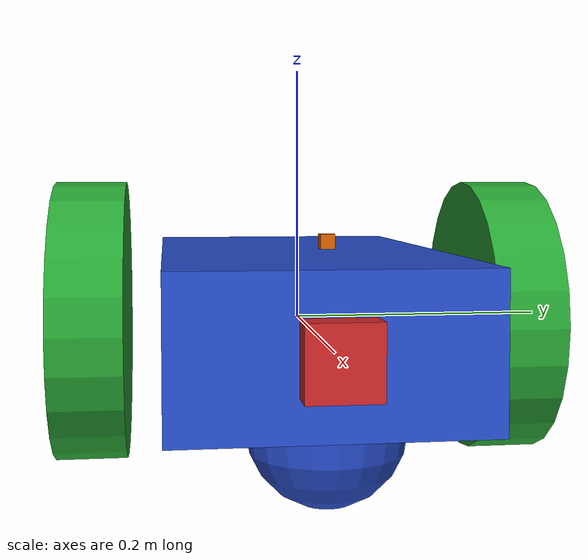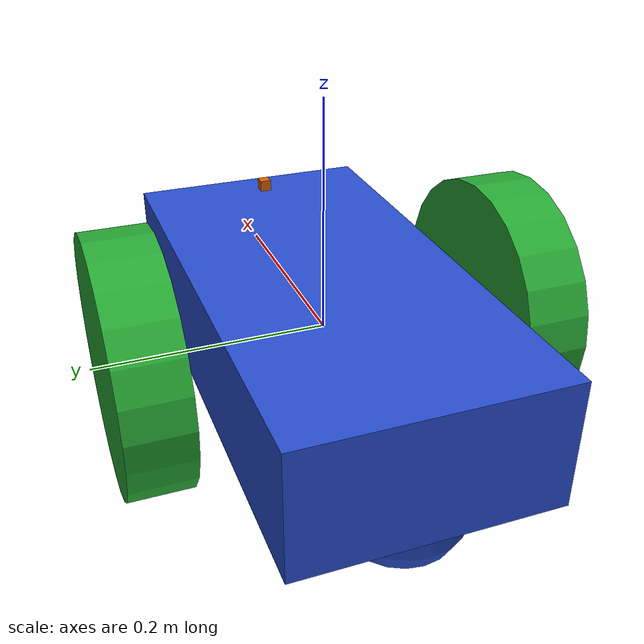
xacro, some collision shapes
<?xml version='1.0'?>

<robot name="shreyas_bot" xmlns:xacro="http://www.ros.org/wiki/xacro">
<xacro:include filename="$(find shreyas_bot)/urdf/shreyas_bot.gazebo" />
<xacro:include filename="$(find shreyas_bot)/urdf/shreyas_materials.xacro" />

  <link name="robot_footprint"></link>

  <joint name="robot_footprint_joint" type="fixed">
    <origin xyz="0 0 0" rpy="0 0 0" />
    <parent link="robot_footprint"/>
    <child link="chassis" />
  </joint>

  <!-- chassis link -->
  <link name='chassis'>
    <pose>0 0 0.1 0 0 0</pose>

    <inertial>
      <mass value="16.5"/>
      <origin xyz="0.0 0 0" rpy=" 0 0 0"/>
      <inertia
          ixx="0.11" ixy="0" ixz="0"
          iyy="0.11" iyz="0"
          izz="0.11"
      />
    </inertial>

    <collision name='collision'>
      <origin xyz="0 0 0" rpy=" 0 0 0"/>
      <geometry>
        <box size=".44 .22 .11"/>
      </geometry>
    </collision>

    <visual name='chassis_visual'>
      <origin xyz="0 0 0" rpy=" 0 0 0"/>
      <geometry>
        <box size=".44 .22 .11"/>
      </geometry>
      <material name="blue"/>
    </visual>

    <collision name='back_caster_collision'>
      <origin xyz="-0.165 0 -0.055" rpy=" 0 0 0"/>
      <geometry>
        <sphere radius="0.055"/>
      </geometry>
      <surface>
        <friction>
          <ode>
            <mu>0</mu>
            <mu2>0</mu2>
            <slip1>1.0</slip1>
            <slip2>1.0</slip2>
          </ode>
        </friction>
      </surface>
    </collision>

    <visual name='back_caster_visual'>
      <origin xyz="-0.165 0 -0.055" rpy=" 0 0 0"/>
      <geometry>
        <sphere radius="0.055"/>
      </geometry>
    </visual>

    <collision name='front_caster_collision'>
      <origin xyz="0.165 0 -0.055" rpy=" 0 0 0"/>
      <geometry>
        <sphere radius="0.055"/>
      </geometry>
      <surface>
        <friction>
          <ode>
            <mu>0</mu>
            <mu2>0</mu2>
            <slip1>1.0</slip1>
            <slip2>1.0</slip2>
          </ode>
        </friction>
      </surface>
    </collision>

    <visual name='front_caster_visual'>
      <origin xyz="0.165 0 -0.055" rpy=" 0 0 0"/>
      <geometry>
        <sphere radius="0.055"/>
      </geometry>
    </visual>
  </link>

  <!-- left Wheel link -->
  <link name="left_wheel">
    <pose>0 0 0 0 1.5707 1.5707</pose>

    <inertial>
      <mass value="5.5"/>
      <origin xyz="0 0 0" rpy=" 0 1.5707 1.5707"/>
      <inertia
          ixx="0.1" ixy="0" ixz="0"
          iyy="0.1" iyz="0"
          izz="0.1"
      />
    </inertial>

    <collision name="collision">
      <origin xyz="0 0 0" rpy=" 0 1.5707 1.5707"/>
      <geometry>
        <cylinder length="0.055" radius="0.11"/>
      </geometry>
    </collision>

    <visual name="visual">
      <origin xyz="0 0 0" rpy=" 0 1.5707 1.5707"/>
      <geometry>
        <cylinder length="0.055" radius="0.11"/>
      </geometry>
      <material name="green"/>
    </visual>
  </link>

  <!-- right Wheel link -->
  <link name="right_wheel">
    <pose>0 0 0 0 -1.5707 1.5707</pose>

    <inertial>
      <mass value="5.5"/>
      <origin xyz="0 0 0" rpy=" 0 -1.5707 1.5707"/>
      <inertia
          ixx="0.1" ixy="0" ixz="0"
          iyy="0.1" iyz="0"
          izz="0.1"
      />
    </inertial>

    <collision name="collision">
      <origin xyz="0 0 0" rpy=" 0 -1.5707 1.5707"/>
      <geometry>
        <cylinder length="0.055" radius="0.11"/>
      </geometry>
    </collision>

    <visual name="visual">
      <origin xyz="0 0 0" rpy=" 0 -1.5707 1.5707"/>
      <geometry>
        <cylinder length="0.055" radius="0.11"/>
      </geometry>
      <material name="green"/>
    </visual>
  </link>

  <!-- camera link -->
  <link name='camera'>
    <pose>0 0 0 0 0 0</pose>

    <inertial>
      <mass value="0.1"/>
      <origin xyz="0.0 0 0" rpy=" 0 0 0"/>
      <inertia
          ixx="1e-6" ixy="0" ixz="0"
          iyy="1e-6" iyz="0"
          izz="1e-6"
      />
    </inertial>

    <collision name='collision'>
      <origin xyz="0 0 0" rpy=" 0 0 0"/>
      <geometry>
        <box size=".05 .05 .05"/>
      </geometry>
    </collision>

    <visual name='chassis_visual'>
      <origin xyz="0 0 0" rpy=" 0 0 0"/>
      <geometry>
        <box size=".05 .05 .05"/>
      </geometry>
      <material name="red"/>
    </visual>
  </link>

  <!-- laser rangefinder link -->
  <link name='hokuyo'>
    <pose>0 0 0 0 0 0</pose>

    <inertial>
      <mass value="0.1"/>
      <origin xyz="0.0 0 0" rpy=" 0 0 0"/>
      <inertia
          ixx="1e-6" ixy="0" ixz="0"
          iyy="1e-6" iyz="0"
          izz="1e-6"
      />
    </inertial>

    <collision name='collision'>
      <origin xyz="0 0 0" rpy=" 0 0 0"/>
      <geometry>
        <box size=".01 .01 .01"/>
      </geometry>
    </collision>

    <visual name='chassis_visual'>
      <origin xyz="0 0 0" rpy=" 0 0 0"/>
      <geometry>
        <mesh filename="package://shreyas_bot/meshes/hokuyo.dae"/>
      </geometry>
    </visual>
  </link>

  <!-- left wheel joint -->
  <joint type="continuous" name="left_wheel_hinge">
    <origin xyz="0 0.165 0" rpy="0 0 0"/>
    <child link="left_wheel"/>
    <parent link="chassis"/>
    <axis xyz="0 1 0" rpy="0 0 0"/>
    <limit effort="11000" velocity="1000"/>
    <joint_properties damping="1.0" friction="1.0"/>
  </joint>

  <!-- right wheel joint -->
  <joint type="continuous" name="right_wheel_hinge">
    <origin xyz="0 -0.165 0" rpy="0 0 0"/>
    <child link="right_wheel"/>
    <parent link="chassis"/>
    <axis xyz="0 1 0" rpy="0 0 0"/>
    <limit effort="11000" velocity="1000"/>
    <joint_properties damping="1.0" friction="1.0"/>
  </joint>

  <!-- camera joint -->
  <joint type="fixed" name="camera_joint">
    <origin xyz="0.22 0 0" rpy="0 0 0"/>
    <child link="camera"/>
    <parent link="chassis"/>
    <axis xyz="0 1 0" rpy="0 0 0"/>
    <limit effort="10000" velocity="1000"/>
    <joint_properties damping="1.0" friction="1.0"/>
  </joint>

  <!-- laser rangefinder joint -->
  <joint type="fixed" name="hokuyo_joint">
    <origin xyz="0.165 0 0.07" rpy="0 0 0"/>
    <child link="hokuyo"/>
    <parent link="chassis"/>
    <axis xyz="0 1 0" rpy="0 0 0"/>
    <limit effort="10000" velocity="1000"/>
    <joint_properties damping="1.0" friction="1.0"/>
  </joint>

</robot>
